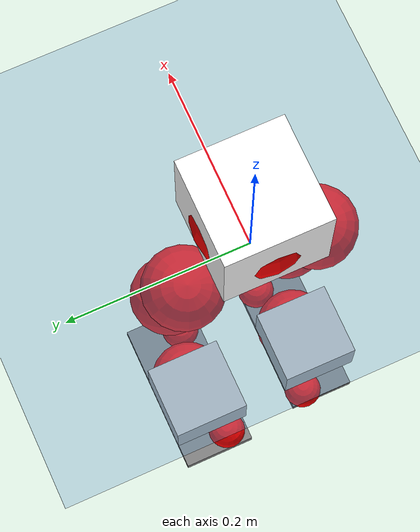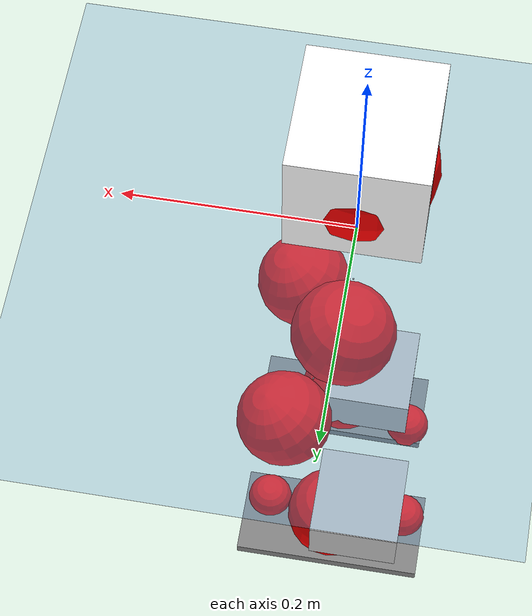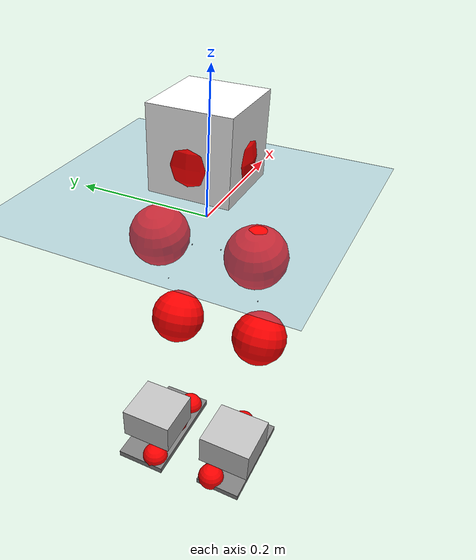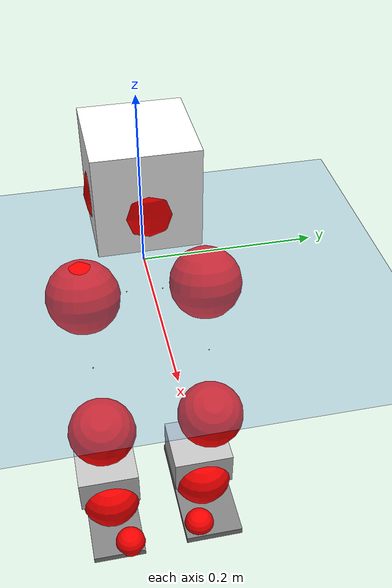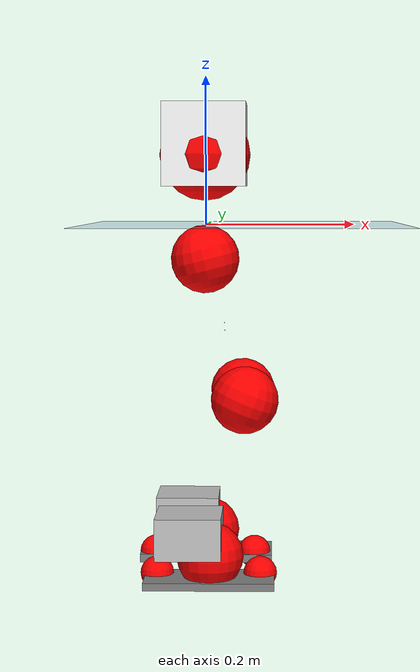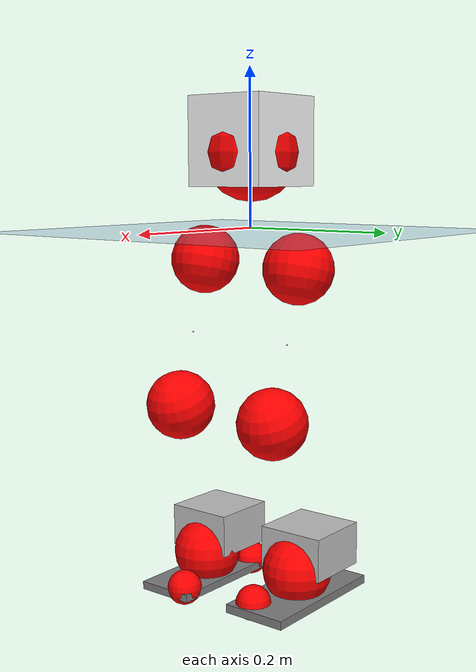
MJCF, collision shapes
<mujoco model="pi_12dof_release_v1">
  <compiler angle="radian" assetdir="assets" balanceinertia="true" inertiafromgeom="false"/>

  <option timestep="0.005" density="1.2" viscosity="2e-05"/>

  <size nkey="1"/>

  <visual>
    <quality shadowsize="8192"/>
    <map shadowclip="0.5"/>
  </visual>

  <default>
    <default class="/">
      <joint armature="0.01" damping="0.01" frictionloss="0.01"/>
      <geom contype="0" conaffinity="0" group="1" solref="-1000 -80"/>
      <site size="0.01 0.005 0.005" group="5"/>
      <general forcelimited="true" biastype="affine" gainprm="20" biasprm="0 -20 -0.5"/>
      <default class="foot">
        <geom size="0.0845 0.036 0.005" type="box" condim="6" group="4" priority="1" friction="0.9 0.2 0.2" solimp="0.015 1 0.005"/>
      </default>
      <default class="reward_collision_sphere">
        <geom group="5" rgba="1 0 0 1"/>
      </default>
    </default>
  </default>

  <asset>
    <texture type="skybox" colorspace="auto" name="//unnamed_texture_0" builtin="gradient" rgb1="0.95 0.95 0.95" rgb2="0.95 0.95 0.95" width="100" height="600"/>
    <texture type="2d" colorspace="auto" name="texplane" builtin="checker" rgb1="0.345 0.575 0.748" rgb2="0.345 0.575 0.748" markrgb="1 1 1" width="512" height="512"/>
    <material name="MatPlane" class="/" texture="texplane" texuniform="true" texrepeat="2 2" specular="0.9"/>
    <mesh name="baselink_1" class="/" file="baselink_1.STL"/>
    <mesh name="r_hip_pitch_link" class="/" file="r_hip_pitch_link.STL"/>
    <mesh name="r_hip_roll_link" class="/" file="r_hip_roll_link.STL"/>
    <mesh name="r_thigh_link" class="/" file="r_thigh_link.STL"/>
    <mesh name="r_calf_link" class="/" file="r_calf_link.STL"/>
    <mesh name="r_ankle_pitch_link" class="/" file="r_ankle_pitch_link.STL"/>
    <mesh name="r_ankle_roll_link" class="/" file="r_ankle_roll_link.STL"/>
    <mesh name="l_hip_pitch_link" class="/" file="l_hip_pitch_link.STL"/>
    <mesh name="l_hip_roll_link" class="/" file="l_hip_roll_link.STL"/>
    <mesh name="l_thigh_link" class="/" file="l_thigh_link.STL"/>
    <mesh name="l_calf_link" class="/" file="l_calf_link.STL"/>
    <mesh name="l_ankle_pitch_link" class="/" file="l_ankle_pitch_link.STL"/>
    <mesh name="l_ankle_roll_link" class="/" file="l_ankle_roll_link.STL"/>
  </asset>

  <worldbody>
    <geom name="floor" class="/" size="100 100 0.125" type="plane" group="0" material="MatPlane"/>
    <light name="toplight_shadow" class="/" pos="0 0 5" dir="0.0990148 0.0990148 -0.990148" type="directional" ambient="0.04 0.04 0.04" diffuse="0.55 0.55 0.55" specular="0.12 0.12 0.12"/>
    <light name="toplight_fill" class="/" pos="0 0 5" dir="0.0990148 0.0990148 -0.990148" type="directional" castshadow="false" ambient="0.04 0.04 0.04" diffuse="0.3 0.3 0.3" specular="0.08 0.08 0.08"/>
    <body name="trunk" pos="-0.00176257 0.000425982 -0.00267797" quat="1 -1.86129e-05 0.000310401 -5.31307e-05">
      <inertial pos="0.00366661 0.00234752 0.0548793" quat="0.690939 0.00874466 0.00527571 0.722841" mass="3.2015" diaginertia="0.0116162 0.00700706 0.0223641"/>
      <joint name="//unnamed_joint_0" type="free"/>
      <geom name="//unnamed_geom_1" class="/" type="mesh" density="0" rgba="1 1 1 1" mesh="baselink_1"/>
      <geom name="//unnamed_geom_2" class="/" size="0.0558964 0.0558964 0.0558964" pos="0 0 0.110499" type="box" rgba="1 1 1 1"/>
      <geom name="//unnamed_geom_3" class="reward_collision_sphere" size="0.061486" pos="0 0 0.0966867"/>
      <site name="imu" class="/" pos="0.00101925 0.0122275 -0.00150618" size="0.0111793"/>
      <camera name="track" class="/" pos="0 -1.88805 0" quat="0.707107 0.707107 0 0" mode="trackcom"/>
      <camera name="ego_camera" class="/" pos="0.0771388 0 0.248623" quat="-0.5 -0.5 0.5 0.5"/>
      <body name="r_hip_pitch_link" pos="0.000968324 -0.0233948 -0.0430369" quat="0.992166 -1.1816e-05 -0.124918 -0.00135411">
        <inertial pos="0.0031388 -0.0538199 -0.000410168" quat="-0.0192063 0.706107 -0.0277292 0.707301" mass="0.511701" diaginertia="0.000125008 7.76924e-05 0.000418461"/>
        <joint name="r_hip_pitch_joint" class="/" pos="0 0 0" axis="-0.00935261 -0.999907 0.00989694" range="-1.80192 1.26811" armature="0.0097371" damping="0.0143707" frictionloss="0.0119213"/>
        <geom name="//unnamed_geom_4" class="/" type="mesh" density="0" rgba="0.75294 0.75294 0.75294 1" mesh="r_hip_pitch_link"/>
        <geom name="//unnamed_geom_5" class="/" size="0.000558964 0.000558964 0.000558964" type="box" rgba="0.75294 0.75294 0.75294 1"/>
        <body name="r_hip_roll_link" pos="0.00284968 -0.0520291 0.00176921" quat="1 -0.000141138 0.000142357 0.000126909">
          <inertial pos="-0.000147338 -0.00173794 -0.0835364" quat="0.705768 -0.078973 -0.0826867 0.699155" mass="0.537405" diaginertia="0.000390354 0.00020397 0.000617773"/>
          <joint name="r_hip_roll_joint" class="/" pos="0 0 0" axis="-0.999981 0.002875 0.00543274" range="-0.165296 0.467687" armature="0.00968358" damping="0.0140544" frictionloss="0.0114796"/>
          <geom name="//unnamed_geom_6" class="/" type="mesh" density="0" rgba="0.75294 0.75294 0.75294 1" mesh="r_hip_roll_link"/>
          <geom name="//unnamed_geom_7" class="/" size="0.000558964 0.000558964 0.000558964" type="box" rgba="0.75294 0.75294 0.75294 1"/>
          <geom name="//unnamed_geom_8" class="reward_collision_sphere" size="0.0447171"/>
          <body name="r_thigh_link" pos="0.00180906 0.000568893 -0.0968754" quat="0.999999 0.000519694 -0.000593577 -0.000652851">
            <inertial pos="-0.000587196 0.00162771 -0.0638302" quat="0.745786 0.666163 -0.00549097 -7.94789e-05" mass="0.157009" diaginertia="0.000136198 7.08615e-05 0.000292749"/>
            <joint name="r_thigh_joint" class="/" pos="0 0 0" axis="0.0024985 0.00203484 -0.999995" range="-0.319735 0.638757" armature="0.0100053" damping="0.0145847" frictionloss="0.0122025"/>
            <geom name="//unnamed_geom_9" class="/" type="mesh" density="0" rgba="0.75294 0.75294 0.75294 1" mesh="r_thigh_link"/>
            <geom name="//unnamed_geom_10" class="/" size="0.000558964 0.000558964 0.000558964" type="box" rgba="0.75294 0.75294 0.75294 1"/>
            <body name="r_calf_link" pos="0.00208649 0.000318094 -0.0965854" quat="0.94765 0.00045922 0.31931 -0.000133996">
              <inertial pos="0.00207598 -0.00107079 -0.0955313" quat="0.999983 -0.00151443 -0.00174501 0.00542208" mass="1.1406" diaginertia="0.00387116 0.00254493 0.000830667"/>
              <joint name="r_calf_joint" class="/" pos="0 0 0" axis="-0.0030491 -0.999993 0.00215624" stiffness="0.000656524" range="-1.67727 0.641658" armature="0.0104351" damping="0.017221" frictionloss="0.0118347"/>
              <geom name="//unnamed_geom_11" class="/" type="mesh" density="0" rgba="0.75294 0.75294 0.75294 1" mesh="r_calf_link"/>
              <geom name="//unnamed_geom_12" class="/" size="0.000558964 0.000558964 0.000558964" type="box" rgba="0.75294 0.75294 0.75294 1"/>
              <geom name="//unnamed_geom_13" class="reward_collision_sphere" size="0.0447171"/>
              <body name="r_ankle_pitch_link" pos="0.00131112 0.00122746 -0.194009" quat="0.980126 1.71438e-05 -0.198374 -0.000316764">
                <inertial pos="0.00727784 0.00219488 -0.000295856" quat="-0.00244064 0.712773 7.33356e-05 0.70139" mass="0.24385" diaginertia="0.000342579 0.000155468 0.000586239"/>
                <joint name="r_ankle_pitch_joint" class="/" pos="0 0 0" axis="-0.00411957 -0.999991 -0.000566446" range="-1.24292 0.49446" armature="0.0109378" damping="0" frictionloss="0.0124931"/>
                <geom name="//unnamed_geom_14" class="/" type="mesh" density="0" rgba="0.75294 0.75294 0.75294 1" mesh="r_ankle_pitch_link"/>
                <geom name="//unnamed_geom_15" class="/" size="0.0435992 0.0447171 0.0279482" type="box" rgba="0.75294 0.75294 0.75294 1"/>
                <body name="r_ankle_roll_link" pos="0.079036 0.00131133 -0.00302964" quat="1 -7.29379e-05 8.71092e-05 4.89754e-05">
                  <inertial pos="-0.023848 -0.000405391 -0.0205327" quat="0.560132 0.431253 0.433885 0.558584" mass="0.730992" diaginertia="0.00129466 0.000771239 0.00139589"/>
                  <joint name="r_ankle_roll_joint" class="/" pos="0 0 0" axis="-0.999982 -0.00353793 -0.00482537" stiffness="0.00744532" range="-0.139502 0.14024" armature="0.0109324" damping="0.00049671" frictionloss="0.0114455"/>
                  <geom name="//unnamed_geom_16" class="/" type="mesh" density="0" rgba="0.75294 0.75294 0.75294 1" mesh="r_ankle_roll_link"/>
                  <geom name="//unnamed_geom_17" class="/" type="mesh" rgba="0.75294 0.75294 0.75294 1" mesh="r_ankle_roll_link"/>
                  <geom name="right_foot" class="foot" size="0.0864912 0.0386356 0.00502672" pos="-0.0524544 0 -0.0607745"/>
                  <geom name="//unnamed_geom_19" class="reward_collision_sphere" size="0.0447171" pos="-0.0514258 0 -0.0276248"/>
                  <geom name="//unnamed_geom_20" class="reward_collision_sphere" size="0.0223585" pos="0.0154278 0.0188805 -0.0552495"/>
                  <geom name="//unnamed_geom_21" class="reward_collision_sphere" size="0.0223585" pos="-0.123422 0.0188805 -0.0552495"/>
                  <site name="right_foot" class="foot" pos="-0.0524544 0 -0.0607745" size="0.0111793"/>
                </body>
              </body>
            </body>
          </body>
        </body>
      </body>
      <body name="l_hip_pitch_link" pos="-0.000282554 0.0207573 -0.0462499" quat="0.992264 -0.00018019 -0.124143 0.00022664">
        <inertial pos="0.00364852 0.0501725 -0.00166701" quat="-0.0329967 0.711642 0.0272223 0.701238" mass="0.551291" diaginertia="0.000151001 8.16174e-05 0.000515682"/>
        <joint name="l_hip_pitch_joint" class="/" pos="0 0 0" axis="0.0032493 0.999974 -0.00641246" range="-1.1915 1.76166" armature="0.0112182" damping="0.026145" frictionloss="0.0114083"/>
        <geom name="//unnamed_geom_22" class="/" type="mesh" density="0" rgba="0.75294 0.75294 0.75294 1" mesh="l_hip_pitch_link"/>
        <geom name="//unnamed_geom_23" class="/" size="0.000558964 0.000558964 0.000558964" type="box" rgba="0.75294 0.75294 0.75294 1"/>
        <body name="l_hip_roll_link" pos="0.000471051 0.0532359 0.00025361" quat="1 1.62354e-05 0.000234321 8.28319e-05">
          <inertial pos="-0.00121966 -0.000348942 -0.0827738" quat="0.703582 -0.0850001 -0.0839039 0.700505" mass="0.551407" diaginertia="0.000390795 0.000217755 0.000681124"/>
          <joint name="l_hip_roll_joint" class="/" pos="0 0 0" axis="-0.999879 0.0144561 -0.00582601" stiffness="0.0146246" range="-0.513168 0.135428" armature="0.00965005" damping="0.00980518" frictionloss="0.00966276"/>
          <geom name="//unnamed_geom_24" class="/" type="mesh" density="0" rgba="0.75294 0.75294 0.75294 1" mesh="l_hip_roll_link"/>
          <geom name="//unnamed_geom_25" class="/" size="0.000558964 0.000558964 0.000558964" type="box" rgba="0.75294 0.75294 0.75294 1"/>
          <geom name="//unnamed_geom_26" class="reward_collision_sphere" size="0.0447171"/>
          <body name="l_thigh_link" pos="0.000571154 0.000289809 -0.0944049" quat="1 0.000479529 0.00041359 0.000665276">
            <inertial pos="-0.00231602 -0.00270766 -0.0660071" quat="0.680673 0.732515 -0.0100655 -0.00205388" mass="0.162376" diaginertia="0.000144108 7.27465e-05 0.000306707"/>
            <joint name="l_thigh_joint" class="/" pos="0 0 0" axis="0.0135935 -0.00578703 -0.999891" stiffness="0.00866231" range="-0.615622 0.330995" armature="0.0124752" damping="0.00534916" frictionloss="0.0125916"/>
            <geom name="//unnamed_geom_27" class="/" type="mesh" density="0" rgba="0.75294 0.75294 0.75294 1" mesh="l_thigh_link"/>
            <geom name="//unnamed_geom_28" class="/" size="0.000558964 0.000558964 0.000558964" type="box" rgba="0.75294 0.75294 0.75294 1"/>
            <body name="l_calf_link" pos="0.00201302 -0.0024379 -0.0986188" quat="0.947544 -0.000341742 0.319625 0.000144922">
              <inertial pos="-0.000866672 0.00455216 -0.0950311" quat="0.999952 -0.0017184 -0.00601583 0.00754752" mass="1.14148" diaginertia="0.00411876 0.00266789 0.000883019"/>
              <joint name="l_calf_joint" class="/" pos="0 0 0" axis="-0.00572481 0.999943 0.00898512" range="-0.665874 1.60693" armature="0.0124931" damping="0.00536278" frictionloss="0.0109722"/>
              <geom name="//unnamed_geom_29" class="/" type="mesh" density="0" rgba="0.75294 0.75294 0.75294 1" mesh="l_calf_link"/>
              <geom name="//unnamed_geom_30" class="/" size="0.000558964 0.000558964 0.000558964" type="box" rgba="0.75294 0.75294 0.75294 1"/>
              <geom name="//unnamed_geom_31" class="reward_collision_sphere" size="0.0447171"/>
              <body name="l_ankle_pitch_link" pos="-0.00229309 0.00183697 -0.19176" quat="0.980085 0.000241269 -0.198577 6.39681e-05">
                <inertial pos="0.00409662 -0.000832487 -0.000221353" quat="-0.00116272 0.709274 0.00345406 0.704923" mass="0.244227" diaginertia="0.000347583 0.000169803 0.000602246"/>
                <joint name="l_ankle_pitch_joint" class="/" pos="0 0 0" axis="0.00523817 0.999981 -0.0033075" range="-0.505688 1.30535" armature="0.0111111" damping="0" frictionloss="0.0127087"/>
                <geom name="//unnamed_geom_32" class="/" type="mesh" density="0" rgba="0.75294 0.75294 0.75294 1" mesh="l_ankle_pitch_link"/>
                <geom name="//unnamed_geom_33" class="/" size="0.0435992 0.0447171 0.0279482" type="box" rgba="0.75294 0.75294 0.75294 1"/>
                <body name="l_ankle_roll_link" pos="0.07852 -5.28535e-06 0.00278004" quat="1 -5.92386e-05 0.000105627 -4.65995e-05">
                  <inertial pos="-0.0261331 -0.000414075 -0.0188449" quat="0.56731 0.421357 0.431625 0.56064" mass="0.724534" diaginertia="0.00134044 0.000759901 0.00142857"/>
                  <joint name="l_ankle_roll_joint" class="/" pos="0 0 0" axis="-0.999987 -0.00505977 0.00109694" stiffness="0.00051351" range="-0.161583 0.208378" armature="0.0096703" damping="0.0153184" frictionloss="0.0096328"/>
                  <geom name="//unnamed_geom_34" class="/" type="mesh" density="0" rgba="0.75294 0.75294 0.75294 1" mesh="l_ankle_roll_link"/>
                  <geom name="//unnamed_geom_35" class="/" type="mesh" rgba="0.75294 0.75294 0.75294 1" mesh="l_ankle_roll_link"/>
                  <geom name="left_foot" class="foot" size="0.092449 0.0426744 0.00548641" pos="-0.0524544 0 -0.0607745"/>
                  <geom name="//unnamed_geom_37" class="reward_collision_sphere" size="0.0447171" pos="-0.0514258 0 -0.0276248"/>
                  <geom name="//unnamed_geom_38" class="reward_collision_sphere" size="0.0223585" pos="0.0154278 -0.0188805 -0.0552495"/>
                  <geom name="//unnamed_geom_39" class="reward_collision_sphere" size="0.0223585" pos="-0.123422 -0.0188805 -0.0552495"/>
                  <site name="left_foot" class="foot" pos="-0.0524544 0 -0.0607745" size="0.0111793"/>
                </body>
              </body>
            </body>
          </body>
        </body>
      </body>
    </body>
  </worldbody>

  <contact>
    <pair class="/" geom1="floor" geom2="right_foot" name="//unnamed_contact_1"/>
    <pair class="/" geom1="floor" geom2="left_foot" name="//unnamed_contact_0"/>
  </contact>

  <actuator>
    <general name="r_hip_pitch_joint" class="/" joint="r_hip_pitch_joint" forcerange="-24.3534 24.3534" gainprm="21.8254" biasprm="0 -21.8254 -0.601328"/>
    <general name="r_hip_roll_joint" class="/" joint="r_hip_roll_joint" forcerange="-25.4321 25.4321" gainprm="21.8254" biasprm="0 -21.8254 -0.601328"/>
    <general name="r_thigh_joint" class="/" joint="r_thigh_joint" forcerange="-22.5406 22.5406" gainprm="21.8254" biasprm="0 -21.8254 -0.601328"/>
    <general name="r_calf_joint" class="/" joint="r_calf_joint" forcerange="-22.133 22.133" gainprm="21.8254" biasprm="0 -21.8254 -0.601328"/>
    <general name="r_ankle_pitch_joint" class="/" joint="r_ankle_pitch_joint" forcerange="-24.865 24.865" gainprm="21.8254" biasprm="0 -21.8254 -0.601328"/>
    <general name="r_ankle_roll_joint" class="/" joint="r_ankle_roll_joint" forcerange="-23.7586 23.7586" gainprm="21.8254" biasprm="0 -21.8254 -0.601328"/>
    <general name="l_hip_pitch_joint" class="/" joint="l_hip_pitch_joint" forcerange="-23.6584 23.6584" gainprm="21.8254" biasprm="0 -21.8254 -0.601328"/>
    <general name="l_hip_roll_joint" class="/" joint="l_hip_roll_joint" forcerange="-21.3223 21.3223" gainprm="21.8254" biasprm="0 -21.8254 -0.601328"/>
    <general name="l_thigh_joint" class="/" joint="l_thigh_joint" forcerange="-22.9597 22.9597" gainprm="21.8254" biasprm="0 -21.8254 -0.601328"/>
    <general name="l_calf_joint" class="/" joint="l_calf_joint" forcerange="-24.2273 24.2273" gainprm="21.8254" biasprm="0 -21.8254 -0.601328"/>
    <general name="l_ankle_pitch_joint" class="/" joint="l_ankle_pitch_joint" forcerange="-25.679 25.679" gainprm="21.8254" biasprm="0 -21.8254 -0.601328"/>
    <general name="l_ankle_roll_joint" class="/" joint="l_ankle_roll_joint" forcerange="-24.1123 24.1123" gainprm="21.8254" biasprm="0 -21.8254 -0.601328"/>
  </actuator>

  <sensor>
    <gyro site="imu" name="imu_angular_velocity"/>
    <velocimeter site="imu" name="imu_linear_velocity"/>
    <framelinvel objtype="site" objname="left_foot" name="left_foot_global_linear_velocity"/>
    <framelinvel objtype="site" objname="right_foot" name="right_foot_global_linear_velocity"/>
  </sensor>

  <keyframe>
    <key name="home" qpos="0 0 0.291 1 0 0 0 0.4 0 0 -0.8 0.4 0 -0.4 0 0 0.8 -0.4 0"/>
  </keyframe>
</mujoco>
